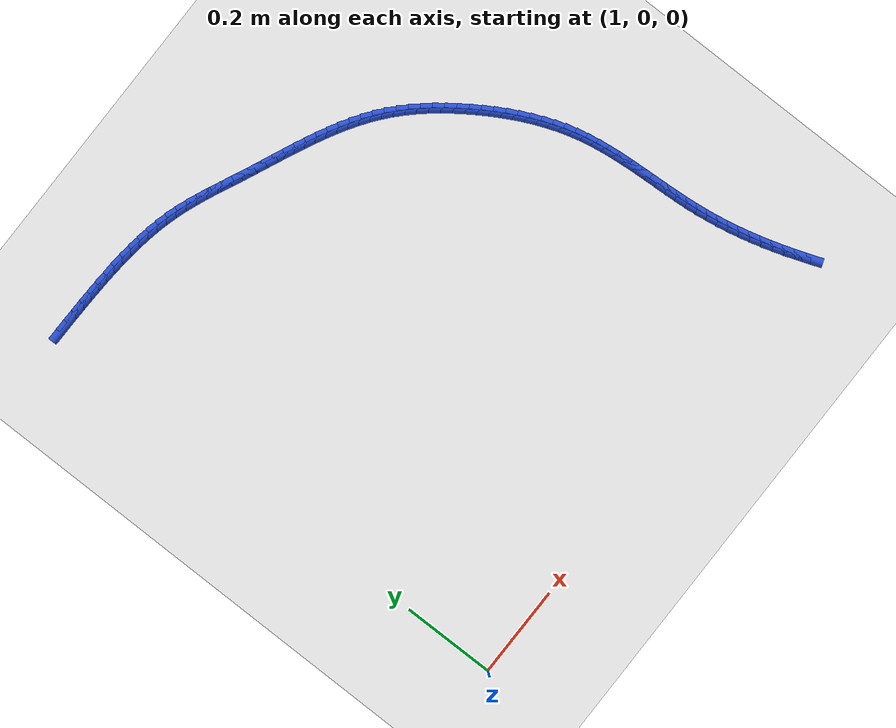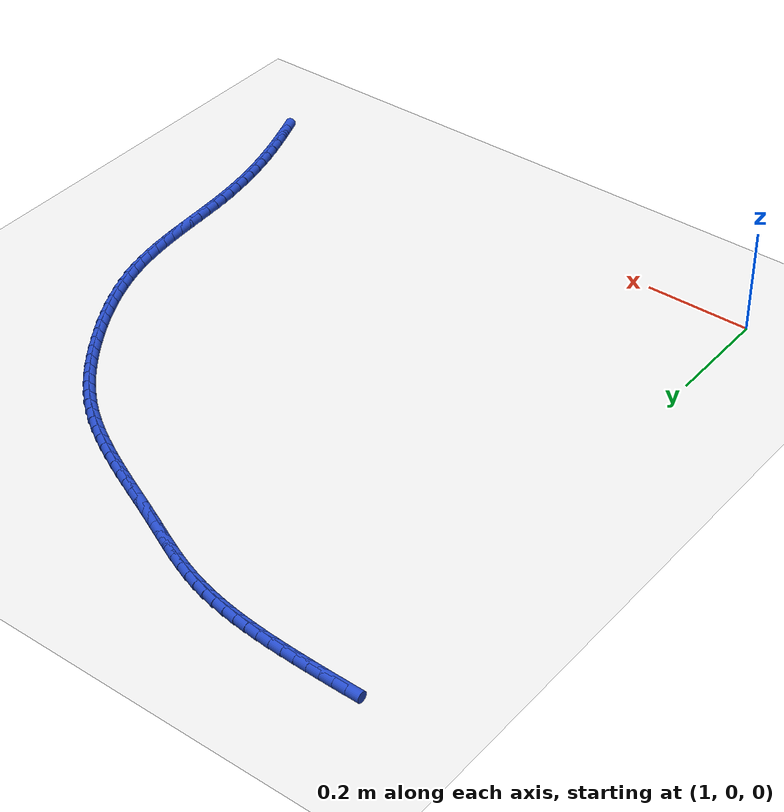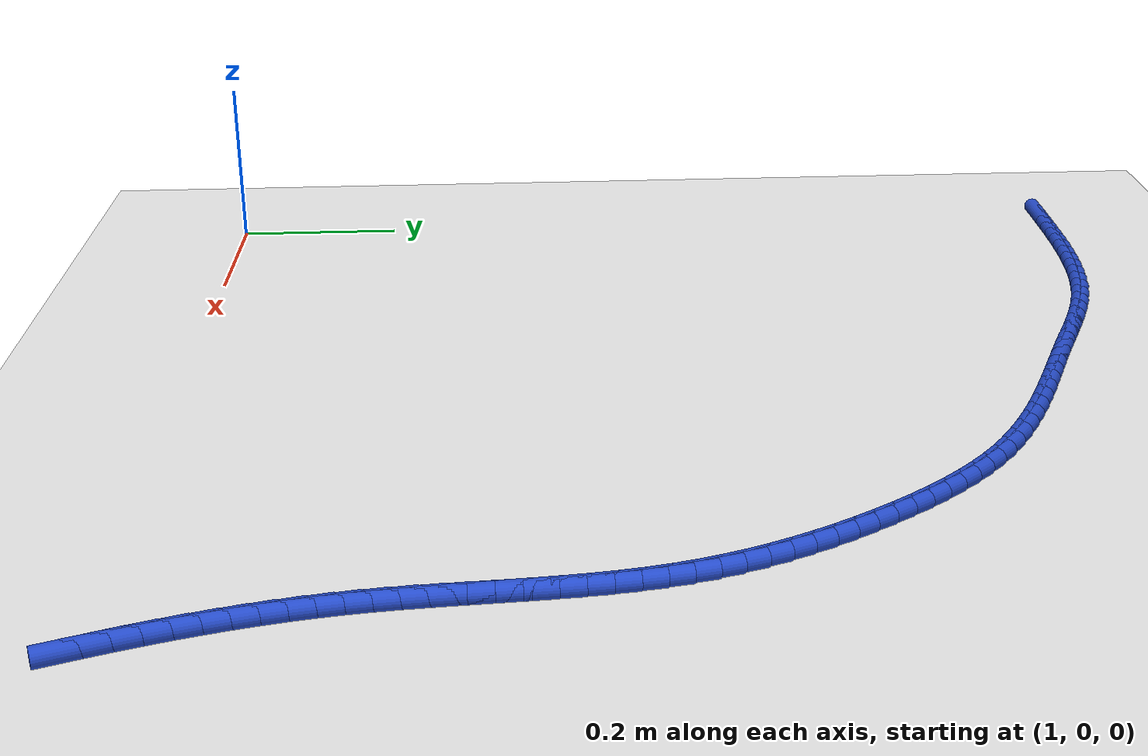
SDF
<sdf version="1.6">
 <world name="default">
  <model name="ground_plane">
   <static>1</static>
   <link name="link">
    <collision name="collision">
     <geometry><plane><normal>0 0 1</normal><size>100 100</size></plane></geometry>
     <surface><friction><ode><mu>100</mu><mu2>50</mu2></ode></friction></surface>
    </collision>
    <visual name="visual">
     <cast_shadows>0</cast_shadows>
     <geometry><plane><normal>0 0 1</normal><size>100 100</size></plane></geometry>
     <material>
      <script><uri>file://media/materials/scripts/gazebo.material</uri><name>Gazebo/WhiteGlow</name></script>
     </material>
    </visual>
   </link>
  </model>
  <model name="line">
   <link name="link_68">
    <pose>1.0212195065474527 1.0920411531585328 0.01 0 1.57 -0.01190918186807699</pose>
    <collision name="collision">
     <geometry><cylinder><radius>0.01</radius><length>0.08</length></cylinder></geometry>
    </collision>
    <visual name="visual">
     <material>
      <script><name>Gazebo/Blue</name><uri>file://media/materials/scripts/gazebo.material</uri></script>
     </material>
     <geometry><cylinder><radius>0.01</radius><length>0.08</length></cylinder></geometry>
    </visual>
   </link>
   <link name="link_69">
    <pose>1.045372040660851 1.091753502638048 0.01 0 1.57 -0.020824186868915316</pose>
    <collision name="collision">
     <geometry><cylinder><radius>0.01</radius><length>0.08</length></cylinder></geometry>
    </collision>
    <visual name="visual">
     <material>
      <script><name>Gazebo/Blue</name><uri>file://media/materials/scripts/gazebo.material</uri></script>
     </material>
     <geometry><cylinder><radius>0.01</radius><length>0.08</length></cylinder></geometry>
    </visual>
   </link>
   <link name="link_70">
    <pose>1.0695882642636443 1.091249146566251 0.01 0 1.57 -0.026765653244638928</pose>
    <collision name="collision">
     <geometry><cylinder><radius>0.01</radius><length>0.08</length></cylinder></geometry>
    </collision>
    <visual name="visual">
     <material>
      <script><name>Gazebo/Blue</name><uri>file://media/materials/scripts/gazebo.material</uri></script>
     </material>
     <geometry><cylinder><radius>0.01</radius><length>0.08</length></cylinder></geometry>
    </visual>
   </link>
   <link name="link_71">
    <pose>1.0938724663864265 1.0905990087725475 0.01 0 1.57 -0.03485059119270547</pose>
    <collision name="collision">
     <geometry><cylinder><radius>0.01</radius><length>0.08</length></cylinder></geometry>
    </collision>
    <visual name="visual">
     <material>
      <script><name>Gazebo/Blue</name><uri>file://media/materials/scripts/gazebo.material</uri></script>
     </material>
     <geometry><cylinder><radius>0.01</radius><length>0.08</length></cylinder></geometry>
    </visual>
   </link>
   <link name="link_72">
    <pose>1.118196166064458 1.0897509700986394 0.01 0 1.57 -0.046577803580105076</pose>
    <collision name="collision">
     <geometry><cylinder><radius>0.01</radius><length>0.08</length></cylinder></geometry>
    </collision>
    <visual name="visual">
     <material>
      <script><name>Gazebo/Blue</name><uri>file://media/materials/scripts/gazebo.material</uri></script>
     </material>
     <geometry><cylinder><radius>0.01</radius><length>0.08</length></cylinder></geometry>
    </visual>
   </link>
   <link name="link_73">
    <pose>1.1425213543378696 1.0886171361907921 0.01 0 1.57 -0.06198759726018203</pose>
    <collision name="collision">
     <geometry><cylinder><radius>0.01</radius><length>0.08</length></cylinder></geometry>
    </collision>
    <visual name="visual">
     <material>
      <script><name>Gazebo/Blue</name><uri>file://media/materials/scripts/gazebo.material</uri></script>
     </material>
     <geometry><cylinder><radius>0.01</radius><length>0.08</length></cylinder></geometry>
    </visual>
   </link>
   <link name="link_74">
    <pose>1.166810021189331 1.087109608724774 0.01 0 1.57 -0.08114251389314583</pose>
    <collision name="collision">
     <geometry><cylinder><radius>0.01</radius><length>0.08</length></cylinder></geometry>
    </collision>
    <visual name="visual">
     <material>
      <script><name>Gazebo/Blue</name><uri>file://media/materials/scripts/gazebo.material</uri></script>
     </material>
     <geometry><cylinder><radius>0.01</radius><length>0.08</length></cylinder></geometry>
    </visual>
   </link>
   <link name="link_75">
    <pose>1.191024156601513 1.0851404893763545 0.01 0 1.57 -0.10412179653237887</pose>
    <collision name="collision">
     <geometry><cylinder><radius>0.01</radius><length>0.08</length></cylinder></geometry>
    </collision>
    <visual name="visual">
     <material>
      <script><name>Gazebo/Blue</name><uri>file://media/materials/scripts/gazebo.material</uri></script>
     </material>
     <geometry><cylinder><radius>0.01</radius><length>0.08</length></cylinder></geometry>
    </visual>
   </link>
   <link name="link_76">
    <pose>1.215125750557085 1.0826218798213028 0.01 0 1.57 -0.131013929390474</pose>
    <collision name="collision">
     <geometry><cylinder><radius>0.01</radius><length>0.08</length></cylinder></geometry>
    </collision>
    <visual name="visual">
     <material>
      <script><name>Gazebo/Blue</name><uri>file://media/materials/scripts/gazebo.material</uri></script>
     </material>
     <geometry><cylinder><radius>0.01</radius><length>0.08</length></cylinder></geometry>
    </visual>
   </link>
   <link name="link_77">
    <pose>1.2390767930387174 1.0794658817353877 0.01 0 1.57 -0.16190695889666235</pose>
    <collision name="collision">
     <geometry><cylinder><radius>0.01</radius><length>0.08</length></cylinder></geometry>
    </collision>
    <visual name="visual">
     <material>
      <script><name>Gazebo/Blue</name><uri>file://media/materials/scripts/gazebo.material</uri></script>
     </material>
     <geometry><cylinder><radius>0.01</radius><length>0.08</length></cylinder></geometry>
    </visual>
   </link>
   <link name="link_78">
    <pose>1.2628392740290804 1.0755845967943782 0.01 0 1.57 -0.1968761777485323</pose>
    <collision name="collision">
     <geometry><cylinder><radius>0.01</radius><length>0.08</length></cylinder></geometry>
    </collision>
    <visual name="visual">
     <material>
      <script><name>Gazebo/Blue</name><uri>file://media/materials/scripts/gazebo.material</uri></script>
     </material>
     <geometry><cylinder><radius>0.01</radius><length>0.08</length></cylinder></geometry>
    </visual>
   </link>
   <link name="link_79">
    <pose>1.2863751835108435 1.0708901266740436 0.01 0 1.57 -0.23596891845109455</pose>
    <collision name="collision">
     <geometry><cylinder><radius>0.01</radius><length>0.08</length></cylinder></geometry>
    </collision>
    <visual name="visual">
     <material>
      <script><name>Gazebo/Blue</name><uri>file://media/materials/scripts/gazebo.material</uri></script>
     </material>
     <geometry><cylinder><radius>0.01</radius><length>0.08</length></cylinder></geometry>
    </visual>
   </link>
   <link name="link_80">
    <pose>1.3096465114666773 1.0652945730501526 0.01 0 1.57 -0.27918655234166023</pose>
    <collision name="collision">
     <geometry><cylinder><radius>0.01</radius><length>0.08</length></cylinder></geometry>
    </collision>
    <visual name="visual">
     <material>
      <script><name>Gazebo/Blue</name><uri>file://media/materials/scripts/gazebo.material</uri></script>
     </material>
     <geometry><cylinder><radius>0.01</radius><length>0.08</length></cylinder></geometry>
    </visual>
   </link>
   <link name="link_81">
    <pose>1.332615247879252 1.0587100375984748 0.01 0 1.57 -0.32467346520582946</pose>
    <collision name="collision">
     <geometry><cylinder><radius>0.01</radius><length>0.08</length></cylinder></geometry>
    </collision>
    <visual name="visual">
     <material>
      <script><name>Gazebo/Blue</name><uri>file://media/materials/scripts/gazebo.material</uri></script>
     </material>
     <geometry><cylinder><radius>0.01</radius><length>0.08</length></cylinder></geometry>
    </visual>
   </link>
   <link name="link_82">
    <pose>1.3552594528700852 1.051088356235415 0.01 0 1.57 -0.3639527078689119</pose>
    <collision name="collision">
     <geometry><cylinder><radius>0.01</radius><length>0.08</length></cylinder></geometry>
    </collision>
    <visual name="visual">
     <material>
      <script><name>Gazebo/Blue</name><uri>file://media/materials/scripts/gazebo.material</uri></script>
     </material>
     <geometry><cylinder><radius>0.01</radius><length>0.08</length></cylinder></geometry>
    </visual>
   </link>
   <link name="link_83">
    <pose>1.3776319329485562 1.0425661791462617 0.01 0 1.57 -0.3945079394052514</pose>
    <collision name="collision">
     <geometry><cylinder><radius>0.01</radius><length>0.08</length></cylinder></geometry>
    </collision>
    <visual name="visual">
     <material>
      <script><name>Gazebo/Blue</name><uri>file://media/materials/scripts/gazebo.material</uri></script>
     </material>
     <geometry><cylinder><radius>0.01</radius><length>0.08</length></cylinder></geometry>
    </visual>
   </link>
   <link name="link_84">
    <pose>1.3998072101457526 1.033333849254945 0.01 0 1.57 -0.4163665491319276</pose>
    <collision name="collision">
     <geometry><cylinder><radius>0.01</radius><length>0.08</length></cylinder></geometry>
    </collision>
    <visual name="visual">
     <material>
      <script><name>Gazebo/Blue</name><uri>file://media/materials/scripts/gazebo.material</uri></script>
     </material>
     <geometry><cylinder><radius>0.01</radius><length>0.08</length></cylinder></geometry>
    </visual>
   </link>
   <link name="link_85">
    <pose>1.4218598088666141 1.023581715354865 0.01 0 1.57 -0.4296202575268219</pose>
    <collision name="collision">
     <geometry><cylinder><radius>0.01</radius><length>0.08</length></cylinder></geometry>
    </collision>
    <visual name="visual">
     <material>
      <script><name>Gazebo/Blue</name><uri>file://media/materials/scripts/gazebo.material</uri></script>
     </material>
     <geometry><cylinder><radius>0.01</radius><length>0.08</length></cylinder></geometry>
    </visual>
   </link>
   <link name="link_86">
    <pose>1.4438642535160788 1.013500126239419 0.01 0 1.57 -0.4343752834057227</pose>
    <collision name="collision">
     <geometry><cylinder><radius>0.01</radius><length>0.08</length></cylinder></geometry>
    </collision>
    <visual name="visual">
     <material>
      <script><name>Gazebo/Blue</name><uri>file://media/materials/scripts/gazebo.material</uri></script>
     </material>
     <geometry><cylinder><radius>0.01</radius><length>0.08</length></cylinder></geometry>
    </visual>
   </link>
   <link name="link_87">
    <pose>1.465895068499085 1.0032794307020054 0.01 0 1.57 -0.43075621564944205</pose>
    <collision name="collision">
     <geometry><cylinder><radius>0.01</radius><length>0.08</length></cylinder></geometry>
    </collision>
    <visual name="visual">
     <material>
      <script><name>Gazebo/Blue</name><uri>file://media/materials/scripts/gazebo.material</uri></script>
     </material>
     <geometry><cylinder><radius>0.01</radius><length>0.08</length></cylinder></geometry>
    </visual>
   </link>
   <link name="link_88">
    <pose>1.4880264109798955 0.9931092685119685 0.01 0 1.57 -0.4229475002258053</pose>
    <collision name="collision">
     <geometry><cylinder><radius>0.01</radius><length>0.08</length></cylinder></geometry>
    </collision>
    <visual name="visual">
     <material>
      <script><name>Gazebo/Blue</name><uri>file://media/materials/scripts/gazebo.material</uri></script>
     </material>
     <geometry><cylinder><radius>0.01</radius><length>0.08</length></cylinder></geometry>
    </visual>
   </link>
   <link name="link_89">
    <pose>1.5102861370675698 0.9830898869392879 0.01 0 1.57 -0.419035956324511</pose>
    <collision name="collision">
     <geometry><cylinder><radius>0.01</radius><length>0.08</length></cylinder></geometry>
    </collision>
    <visual name="visual">
     <material>
      <script><name>Gazebo/Blue</name><uri>file://media/materials/scripts/gazebo.material</uri></script>
     </material>
     <geometry><cylinder><radius>0.01</radius><length>0.08</length></cylinder></geometry>
    </visual>
   </link>
   <link name="link_90">
    <pose>1.5326111584059867 0.9731459486369158 0.01 0 1.57 -0.4199360048989698</pose>
    <collision name="collision">
     <geometry><cylinder><radius>0.01</radius><length>0.08</length></cylinder></geometry>
    </collision>
    <visual name="visual">
     <material>
      <script><name>Gazebo/Blue</name><uri>file://media/materials/scripts/gazebo.material</uri></script>
     </material>
     <geometry><cylinder><radius>0.01</radius><length>0.08</length></cylinder></geometry>
    </visual>
   </link>
   <link name="link_91">
    <pose>1.5549277937929822 0.9631816648668164 0.01 0 1.57 -0.42565033856099116</pose>
    <collision name="collision">
     <geometry><cylinder><radius>0.01</radius><length>0.08</length></cylinder></geometry>
    </collision>
    <visual name="visual">
     <material>
      <script><name>Gazebo/Blue</name><uri>file://media/materials/scripts/gazebo.material</uri></script>
     </material>
     <geometry><cylinder><radius>0.01</radius><length>0.08</length></cylinder></geometry>
    </visual>
   </link>
   <link name="link_92">
    <pose>1.5771623620263917 0.9531012468909543 0.01 0 1.57 -0.43621393192179325</pose>
    <collision name="collision">
     <geometry><cylinder><radius>0.01</radius><length>0.08</length></cylinder></geometry>
    </collision>
    <visual name="visual">
     <material>
      <script><name>Gazebo/Blue</name><uri>file://media/materials/scripts/gazebo.material</uri></script>
     </material>
     <geometry><cylinder><radius>0.01</radius><length>0.08</length></cylinder></geometry>
    </visual>
   </link>
   <link name="link_93">
    <pose>1.5992411819040517 0.942808905971294 0.01 0 1.57 -0.4516905533019826</pose>
    <collision name="collision">
     <geometry><cylinder><radius>0.01</radius><length>0.08</length></cylinder></geometry>
    </collision>
    <visual name="visual">
     <material>
      <script><name>Gazebo/Blue</name><uri>file://media/materials/scripts/gazebo.material</uri></script>
     </material>
     <geometry><cylinder><radius>0.01</radius><length>0.08</length></cylinder></geometry>
    </visual>
   </link>
   <link name="link_94">
    <pose>1.621090572223799 0.9322088533697996 0.01 0 1.57 -0.47216606473237527</pose>
    <collision name="collision">
     <geometry><cylinder><radius>0.01</radius><length>0.08</length></cylinder></geometry>
    </collision>
    <visual name="visual">
     <material>
      <script><name>Gazebo/Blue</name><uri>file://media/materials/scripts/gazebo.material</uri></script>
     </material>
     <geometry><cylinder><radius>0.01</radius><length>0.08</length></cylinder></geometry>
    </visual>
   </link>
   <link name="link_95">
    <pose>1.6426368517834689 0.9212053003484352 0.01 0 1.57 -0.4977379403281383</pose>
    <collision name="collision">
     <geometry><cylinder><radius>0.01</radius><length>0.08</length></cylinder></geometry>
    </collision>
    <visual name="visual">
     <material>
      <script><name>Gazebo/Blue</name><uri>file://media/materials/scripts/gazebo.material</uri></script>
     </material>
     <geometry><cylinder><radius>0.01</radius><length>0.08</length></cylinder></geometry>
    </visual>
   </link>
   <link name="link_96">
    <pose>1.6638063393808975 0.9097024581691657 0.01 0 1.57 -0.5285002932071909</pose>
    <collision name="collision">
     <geometry><cylinder><radius>0.01</radius><length>0.08</length></cylinder></geometry>
    </collision>
    <visual name="visual">
     <material>
      <script><name>Gazebo/Blue</name><uri>file://media/materials/scripts/gazebo.material</uri></script>
     </material>
     <geometry><cylinder><radius>0.01</radius><length>0.08</length></cylinder></geometry>
    </visual>
   </link>
   <link name="link_97">
    <pose>1.6845253538139207 0.8976045380939552 0.01 0 1.57 -0.5645237545394914</pose>
    <collision name="collision">
     <geometry><cylinder><radius>0.01</radius><length>0.08</length></cylinder></geometry>
    </collision>
    <visual name="visual">
     <material>
      <script><name>Gazebo/Blue</name><uri>file://media/materials/scripts/gazebo.material</uri></script>
     </material>
     <geometry><cylinder><radius>0.01</radius><length>0.08</length></cylinder></geometry>
    </visual>
   </link>
   <link name="link_98">
    <pose>1.7047202138803756 0.8848157513847686 0.01 0 1.57 -0.6058299251542558</pose>
    <collision name="collision">
     <geometry><cylinder><radius>0.01</radius><length>0.08</length></cylinder></geometry>
    </collision>
    <visual name="visual">
     <material>
      <script><name>Gazebo/Blue</name><uri>file://media/materials/scripts/gazebo.material</uri></script>
     </material>
     <geometry><cylinder><radius>0.01</radius><length>0.08</length></cylinder></geometry>
    </visual>
   </link>
   <link name="link_99">
    <pose>1.7243172383780978 0.8712403093035699 0.01 0 1.57 -0.6523609691356973</pose>
    <collision name="collision">
     <geometry><cylinder><radius>0.01</radius><length>0.08</length></cylinder></geometry>
    </collision>
    <visual name="visual">
     <material>
      <script><name>Gazebo/Blue</name><uri>file://media/materials/scripts/gazebo.material</uri></script>
     </material>
     <geometry><cylinder><radius>0.01</radius><length>0.08</length></cylinder></geometry>
    </visual>
   </link>
   <link name="link_100">
    <pose>1.7432427461049236 0.856782423112323 0.01 0 1.57 -0.7036854309695617</pose>
    <collision name="collision">
     <geometry><cylinder><radius>0.01</radius><length>0.08</length></cylinder></geometry>
    </collision>
    <visual name="visual">
     <material>
      <script><name>Gazebo/Blue</name><uri>file://media/materials/scripts/gazebo.material</uri></script>
     </material>
     <geometry><cylinder><radius>0.01</radius><length>0.08</length></cylinder></geometry>
    </visual>
   </link>
   <link name="link_101">
    <pose>1.7614261924535228 0.8413518035168185 0.01 0 1.57 -0.7550004369076673</pose>
    <collision name="collision">
     <geometry><cylinder><radius>0.01</radius><length>0.08</length></cylinder></geometry>
    </collision>
    <visual name="visual">
     <material>
      <script><name>Gazebo/Blue</name><uri>file://media/materials/scripts/gazebo.material</uri></script>
     </material>
     <geometry><cylinder><radius>0.01</radius><length>0.08</length></cylinder></geometry>
    </visual>
   </link>
   <link name="link_102">
    <pose>1.7788519716329034 0.8249544863621229 0.01 0 1.57 -0.802368112816253</pose>
    <collision name="collision">
     <geometry><cylinder><radius>0.01</radius><length>0.08</length></cylinder></geometry>
    </collision>
    <visual name="visual">
     <material>
      <script><name>Gazebo/Blue</name><uri>file://media/materials/scripts/gazebo.material</uri></script>
     </material>
     <geometry><cylinder><radius>0.01</radius><length>0.08</length></cylinder></geometry>
    </visual>
   </link>
   <link name="link_103">
    <pose>1.7955512793656185 0.8076785653644253 0.01 0 1.57 -0.8457392690450313</pose>
    <collision name="collision">
     <geometry><cylinder><radius>0.01</radius><length>0.08</length></cylinder></geometry>
    </collision>
    <visual name="visual">
     <material>
      <script><name>Gazebo/Blue</name><uri>file://media/materials/scripts/gazebo.material</uri></script>
     </material>
     <geometry><cylinder><radius>0.01</radius><length>0.08</length></cylinder></geometry>
    </visual>
   </link>
   <link name="link_104">
    <pose>1.8115568073870685 0.789614757224093 0.01 0 1.57 -0.8852408995973183</pose>
    <collision name="collision">
     <geometry><cylinder><radius>0.01</radius><length>0.08</length></cylinder></geometry>
    </collision>
    <visual name="visual">
     <material>
      <script><name>Gazebo/Blue</name><uri>file://media/materials/scripts/gazebo.material</uri></script>
     </material>
     <geometry><cylinder><radius>0.01</radius><length>0.08</length></cylinder></geometry>
    </visual>
   </link>
   <link name="link_105">
    <pose>1.826901247432656 0.7708537786414945 0.01 0 1.57 -0.9210307739773366</pose>
    <collision name="collision">
     <geometry><cylinder><radius>0.01</radius><length>0.08</length></cylinder></geometry>
    </collision>
    <visual name="visual">
     <material>
      <script><name>Gazebo/Blue</name><uri>file://media/materials/scripts/gazebo.material</uri></script>
     </material>
     <geometry><cylinder><radius>0.01</radius><length>0.08</length></cylinder></geometry>
    </visual>
   </link>
   <link name="link_106">
    <pose>1.8416172912377822 0.7514863463169971 0.01 0 1.57 -0.9532804650332631</pose>
    <collision name="collision">
     <geometry><cylinder><radius>0.01</radius><length>0.08</length></cylinder></geometry>
    </collision>
    <visual name="visual">
     <material>
      <script><name>Gazebo/Blue</name><uri>file://media/materials/scripts/gazebo.material</uri></script>
     </material>
     <geometry><cylinder><radius>0.01</radius><length>0.08</length></cylinder></geometry>
    </visual>
   </link>
   <link name="link_107">
    <pose>1.8557376305378483 0.7316031769509679 0.01 0 1.57 -0.9821870273676716</pose>
    <collision name="collision">
     <geometry><cylinder><radius>0.01</radius><length>0.08</length></cylinder></geometry>
    </collision>
    <visual name="visual">
     <material>
      <script><name>Gazebo/Blue</name><uri>file://media/materials/scripts/gazebo.material</uri></script>
     </material>
     <geometry><cylinder><radius>0.01</radius><length>0.08</length></cylinder></geometry>
    </visual>
   </link>
   <link name="link_108">
    <pose>1.8692944812991286 0.7112946073860374 0.01 0 1.57 -1.0097631373762705</pose>
    <collision name="collision">
     <geometry><cylinder><radius>0.01</radius><length>0.08</length></cylinder></geometry>
    </collision>
    <visual name="visual">
     <material>
      <script><name>Gazebo/Blue</name><uri>file://media/materials/scripts/gazebo.material</uri></script>
     </material>
     <geometry><cylinder><radius>0.01</radius><length>0.08</length></cylinder></geometry>
    </visual>
   </link>
   <link name="link_109">
    <pose>1.8822845463614324 0.6906226205110207 0.01 0 1.57 -1.0392395607632612</pose>
    <collision name="collision">
     <geometry><cylinder><radius>0.01</radius><length>0.08</length></cylinder></geometry>
    </collision>
    <visual name="visual">
     <material>
      <script><name>Gazebo/Blue</name><uri>file://media/materials/scripts/gazebo.material</uri></script>
     </material>
     <geometry><cylinder><radius>0.01</radius><length>0.08</length></cylinder></geometry>
    </visual>
   </link>
   <link name="link_110">
    <pose>1.894645052692489 0.6696017132201757 0.01 0 1.57 -1.0710285974018636</pose>
    <collision name="collision">
     <geometry><cylinder><radius>0.01</radius><length>0.08</length></cylinder></geometry>
    </collision>
    <visual name="visual">
     <material>
      <script><name>Gazebo/Blue</name><uri>file://media/materials/scripts/gazebo.material</uri></script>
     </material>
     <geometry><cylinder><radius>0.01</radius><length>0.08</length></cylinder></geometry>
    </visual>
   </link>
   <link name="link_111">
    <pose>1.9063075557281486 0.648241854213006 0.01 0 1.57 -1.105245989051057</pose>
    <collision name="collision">
     <geometry><cylinder><radius>0.01</radius><length>0.08</length></cylinder></geometry>
    </collision>
    <visual name="visual">
     <material>
      <script><name>Gazebo/Blue</name><uri>file://media/materials/scripts/gazebo.material</uri></script>
     </material>
     <geometry><cylinder><radius>0.01</radius><length>0.08</length></cylinder></geometry>
    </visual>
   </link>
   <link name="link_112">
    <pose>1.9172036109042625 0.6265530121890152 0.01 0 1.57 -1.142002197532831</pose>
    <collision name="collision">
     <geometry><cylinder><radius>0.01</radius><length>0.08</length></cylinder></geometry>
    </collision>
    <visual name="visual">
     <material>
      <script><name>Gazebo/Blue</name><uri>file://media/materials/scripts/gazebo.material</uri></script>
     </material>
     <geometry><cylinder><radius>0.01</radius><length>0.08</length></cylinder></geometry>
    </visual>
   </link>
   <link name="link_113">
    <pose>1.9272647736566826 0.6045451558477073 0.01 0 1.57 -1.1813962390715187</pose>
    <collision name="collision">
     <geometry><cylinder><radius>0.01</radius><length>0.08</length></cylinder></geometry>
    </collision>
    <visual name="visual">
     <material>
      <script><name>Gazebo/Blue</name><uri>file://media/materials/scripts/gazebo.material</uri></script>
     </material>
     <geometry><cylinder><radius>0.01</radius><length>0.08</length></cylinder></geometry>
    </visual>
   </link>
   <link name="link_114">
    <pose>1.9364225994212585 0.5822282538885862 0.01 0 1.57 -1.2235080915673442</pose>
    <collision name="collision">
     <geometry><cylinder><radius>0.01</radius><length>0.08</length></cylinder></geometry>
    </collision>
    <visual name="visual">
     <material>
      <script><name>Gazebo/Blue</name><uri>file://media/materials/scripts/gazebo.material</uri></script>
     </material>
     <geometry><cylinder><radius>0.01</radius><length>0.08</length></cylinder></geometry>
    </visual>
   </link>
   <link name="link_115">
    <pose>1.9446086436338412 0.5596122750111561 0.01 0 1.57 -1.2683896804730386</pose>
    <collision name="collision">
     <geometry><cylinder><radius>0.01</radius><length>0.08</length></cylinder></geometry>
    </collision>
    <visual name="visual">
     <material>
      <script><name>Gazebo/Blue</name><uri>file://media/materials/scripts/gazebo.material</uri></script>
     </material>
     <geometry><cylinder><radius>0.01</radius><length>0.08</length></cylinder></geometry>
    </visual>
   </link>
   <link name="link_116">
    <pose>1.9517544617302827 0.5367071879149203 0.01 0 1.57 -1.3160333612362214</pose>
    <collision name="collision">
     <geometry><cylinder><radius>0.01</radius><length>0.08</length></cylinder></geometry>
    </collision>
    <visual name="visual">
     <material>
      <script><name>Gazebo/Blue</name><uri>file://media/materials/scripts/gazebo.material</uri></script>
     </material>
     <geometry><cylinder><radius>0.01</radius><length>0.08</length></cylinder></geometry>
    </visual>
   </link>
   <link name="link_117">
    <pose>1.9577921191399736 0.5135230267607105 0.01 0 1.57 -1.3634942503825223</pose>
    <collision name="collision">
     <geometry><cylinder><radius>0.01</radius><length>0.08</length></cylinder></geometry>
    </collision>
    <visual name="visual">
     <material>
      <script><name>Gazebo/Blue</name><uri>file://media/materials/scripts/gazebo.material</uri></script>
     </material>
     <geometry><cylinder><radius>0.01</radius><length>0.08</length></cylinder></geometry>
    </visual>
   </link>
   <link name="link_118">
    <pose>1.9627230084965483 0.4900787243531396 0.01 0 1.57 -1.4048317184677104</pose>
    <collision name="collision">
     <geometry><cylinder><radius>0.01</radius><length>0.08</length></cylinder></geometry>
    </collision>
    <visual name="visual">
     <material>
      <script><name>Gazebo/Blue</name><uri>file://media/materials/scripts/gazebo.material</uri></script>
     </material>
     <geometry><cylinder><radius>0.01</radius><length>0.08</length></cylinder></geometry>
    </visual>
   </link>
   <link name="link_119">
    <pose>1.9666874714364522 0.46641104859767535 0.01 0 1.57 -1.4392882162370364</pose>
    <collision name="collision">
     <geometry><cylinder><radius>0.01</radius><length>0.08</length></cylinder></geometry>
    </collision>
    <visual name="visual">
     <material>
      <script><name>Gazebo/Blue</name><uri>file://media/materials/scripts/gazebo.material</uri></script>
     </material>
     <geometry><cylinder><radius>0.01</radius><length>0.08</length></cylinder></geometry>
    </visual>
   </link>
   <link name="link_120">
    <pose>1.9698424316811147 0.44255889582929653 0.01 0 1.57 -1.4668960909127482</pose>
    <collision name="collision">
     <geometry><cylinder><radius>0.01</radius><length>0.08</length></cylinder></geometry>
    </collision>
    <visual name="visual">
     <material>
      <script><name>Gazebo/Blue</name><uri>file://media/materials/scripts/gazebo.material</uri></script>
     </material>
     <geometry><cylinder><radius>0.01</radius><length>0.08</length></cylinder></geometry>
    </visual>
   </link>
   <link name="link_121">
    <pose>1.9723448129519647 0.41856116238298186 0.01 0 1.57 -1.4877364846915697</pose>
    <collision name="collision">
     <geometry><cylinder><radius>0.01</radius><length>0.08</length></cylinder></geometry>
    </collision>
    <visual name="visual">
     <material>
      <script><name>Gazebo/Blue</name><uri>file://media/materials/scripts/gazebo.material</uri></script>
     </material>
     <geometry><cylinder><radius>0.01</radius><length>0.08</length></cylinder></geometry>
    </visual>
   </link>
   <link name="link_122">
    <pose>1.9743515389704323 0.3944567445937098 0.01 0 1.57 -1.5019008947467556</pose>
    <collision name="collision">
     <geometry><cylinder><radius>0.01</radius><length>0.08</length></cylinder></geometry>
    </collision>
    <visual name="visual">
     <material>
      <script><name>Gazebo/Blue</name><uri>file://media/materials/scripts/gazebo.material</uri></script>
     </material>
     <geometry><cylinder><radius>0.01</radius><length>0.08</length></cylinder></geometry>
    </visual>
   </link>
   <link name="link_123">
    <pose>1.9760195334579462 0.37028453879645984 0.01 0 1.57 -1.509463460684522</pose>
    <collision name="collision">
     <geometry><cylinder><radius>0.01</radius><length>0.08</length></cylinder></geometry>
    </collision>
    <visual name="visual">
     <material>
      <script><name>Gazebo/Blue</name><uri>file://media/materials/scripts/gazebo.material</uri></script>
     </material>
     <geometry><cylinder><radius>0.01</radius><length>0.08</length></cylinder></geometry>
    </visual>
   </link>
   <link name="link_124">
    <pose>1.9775057201359356 0.34608344132621044 0.01 0 1.57 -1.5104630020349505</pose>
    <collision name="collision">
     <geometry><cylinder><radius>0.01</radius><length>0.08</length></cylinder></geometry>
    </collision>
    <visual name="visual">
     <material>
      <script><name>Gazebo/Blue</name><uri>file://media/materials/scripts/gazebo.material</uri></script>
     </material>
     <geometry><cylinder><radius>0.01</radius><length>0.08</length></cylinder></geometry>
    </visual>
   </link>
   <link name="link_125">
    <pose>1.9789670227258305 0.3218923485179403 0.01 0 1.57 -1.5048936592473698</pose>
    <collision name="collision">
     <geometry><cylinder><radius>0.01</radius><length>0.08</length></cylinder></geometry>
    </collision>
    <visual name="visual">
     <material>
      <script><name>Gazebo/Blue</name><uri>file://media/materials/scripts/gazebo.material</uri></script>
     </material>
     <geometry><cylinder><radius>0.01</radius><length>0.08</length></cylinder></geometry>
    </visual>
   </link>
   <link name="link_126">
    <pose>1.9805603649490597 0.2977501567066279 0.01 0 1.57 -1.492703419152247</pose>
    <collision name="collision">
     <geometry><cylinder><radius>0.01</radius><length>0.08</length></cylinder></geometry>
    </collision>
    <visual name="visual">
     <material>
      <script><name>Gazebo/Blue</name><uri>file://media/materials/scripts/gazebo.material</uri></script>
     </material>
     <geometry><cylinder><radius>0.01</radius><length>0.08</length></cylinder></geometry>
    </visual>
   </link>
   <link name="link_127">
    <pose>1.9824426705270528 0.27369576222725284 0.01 0 1.57 -1.4738005171510487</pose>
    <collision name="collision">
     <geometry><cylinder><radius>0.01</radius><length>0.08</length></cylinder></geometry>
    </collision>
    <visual name="visual">
     <material>
      <script><name>Gazebo/Blue</name><uri>file://media/materials/scripts/gazebo.material</uri></script>
     </material>
     <geometry><cylinder><radius>0.01</radius><length>0.08</length></cylinder></geometry>
    </visual>
   </link>
   <link name="link_128">
    <pose>1.9847708631812389 0.2497680614147933 0.01 0 1.57 -1.44833365918377</pose>
    <collision name="collision">
     <geometry><cylinder><radius>0.01</radius><length>0.08</length></cylinder></geometry>
    </collision>
    <visual name="visual">
     <material>
      <script><name>Gazebo/Blue</name><uri>file://media/materials/scripts/gazebo.material</uri></script>
     </material>
     <geometry><cylinder><radius>0.01</radius><length>0.08</length></cylinder></geometry>
    </visual>
   </link>
   <link name="link_129">
    <pose>1.9876957999153186 0.22600326607075683 0.01 0 1.57 -1.4202425535601797</pose>
    <collision name="collision">
     <geometry><cylinder><radius>0.01</radius><length>0.08</length></cylinder></geometry>
    </collision>
    <visual name="visual">
     <material>
      <script><name>Gazebo/Blue</name><uri>file://media/materials/scripts/gazebo.material</uri></script>
     </material>
     <geometry><cylinder><radius>0.01</radius><length>0.08</length></cylinder></geometry>
    </visual>
   </link>
   <link name="link_130">
    <pose>1.9912768916729966 0.20239712295115656 0.01 0 1.57 -1.3927458843381455</pose>
    <collision name="collision">
     <geometry><cylinder><radius>0.01</radius><length>0.08</length></cylinder></geometry>
    </collision>
    <visual name="visual">
     <material>
      <script><name>Gazebo/Blue</name><uri>file://media/materials/scripts/gazebo.material</uri></script>
     </material>
     <geometry><cylinder><radius>0.01</radius><length>0.08</length></cylinder></geometry>
    </visual>
   </link>
   <link name="link_131">
    <pose>1.9955028097949443 0.17891407641084078 0.01 0 1.57 -1.3660833729679382</pose>
    <collision name="collision">
     <geometry><cylinder><radius>0.01</radius><length>0.08</length></cylinder></geometry>
    </collision>
    <visual name="visual">
     <material>
      <script><name>Gazebo/Blue</name><uri>file://media/materials/scripts/gazebo.material</uri></script>
     </material>
     <geometry><cylinder><radius>0.01</radius><length>0.08</length></cylinder></geometry>
    </visual>
   </link>
   <link name="link_132">
    <pose>2.0003603859579226 0.15551775675008042 0.01 0 1.57 -1.3403998809047424</pose>
    <collision name="collision">
     <geometry><cylinder><radius>0.01</radius><length>0.08</length></cylinder></geometry>
    </collision>
    <visual name="visual">
     <material>
      <script><name>Gazebo/Blue</name><uri>file://media/materials/scripts/gazebo.material</uri></script>
     </material>
     <geometry><cylinder><radius>0.01</radius><length>0.08</length></cylinder></geometry>
    </visual>
   </link>
   <link name="link_133">
    <pose>2.0058364518386953 0.1321717942691456 0.01 0 1.57 -1.3158232150096008</pose>
    <collision name="collision">
     <geometry><cylinder><radius>0.01</radius><length>0.08</length></cylinder></geometry>
    </collision>
    <visual name="visual">
     <material>
      <script><name>Gazebo/Blue</name><uri>file://media/materials/scripts/gazebo.material</uri></script>
     </material>
     <geometry><cylinder><radius>0.01</radius><length>0.08</length></cylinder></geometry>
    </visual>
   </link>
   <link name="link_134">
    <pose>2.0119178391140236 0.10883981926830676 0.01 0 1.57 -1.2924623519577412</pose>
    <collision name="collision">
     <geometry><cylinder><radius>0.01</radius><length>0.08</length></cylinder></geometry>
    </collision>
    <visual name="visual">
     <material>
      <script><name>Gazebo/Blue</name><uri>file://media/materials/scripts/gazebo.material</uri></script>
     </material>
     <geometry><cylinder><radius>0.01</radius><length>0.08</length></cylinder></geometry>
    </visual>
   </link>
   <link name="link_135">
    <pose>2.0185913794606702 0.08548546204783378 0.01 0 1.57 -1.2704064961175054</pose>
    <collision name="collision">
     <geometry><cylinder><radius>0.01</radius><length>0.08</length></cylinder></geometry>
    </collision>
    <visual name="visual">
     <material>
      <script><name>Gazebo/Blue</name><uri>file://media/materials/scripts/gazebo.material</uri></script>
     </material>
     <geometry><cylinder><radius>0.01</radius><length>0.08</length></cylinder></geometry>
    </visual>
   </link>
   <link name="link_136">
    <pose>2.0258439045553964 0.06207235290799779 0.01 0 1.57 -1.249726524734416</pose>
    <collision name="collision">
     <geometry><cylinder><radius>0.01</radius><length>0.08</length></cylinder></geometry>
    </collision>
    <visual name="visual">
     <material>
      <script><name>Gazebo/Blue</name><uri>file://media/materials/scripts/gazebo.material</uri></script>
     </material>
     <geometry><cylinder><radius>0.01</radius><length>0.08</length></cylinder></geometry>
    </visual>
   </link>
   <link name="link_137">
    <pose>2.033662198293173 0.03856413955121775 0.01 0 1.57 -1.2317418510960785</pose>
    <collision name="collision">
     <geometry><cylinder><radius>0.01</radius><length>0.08</length></cylinder></geometry>
    </collision>
    <visual name="visual">
     <material>
      <script><name>Gazebo/Blue</name><uri>file://media/materials/scripts/gazebo.material</uri></script>
     </material>
     <geometry><cylinder><radius>0.01</radius><length>0.08</length></cylinder></geometry>
    </visual>
   </link>
   <link name="link_138">
    <pose>2.0419943050992604 0.014938578611346016 0.01 0 1.57 -1.2198732720678762</pose>
    <collision name="collision">
     <geometry><cylinder><radius>0.01</radius><length>0.08</length></cylinder></geometry>
    </collision>
    <visual name="visual">
     <material>
      <script><name>Gazebo/Blue</name><uri>file://media/materials/scripts/gazebo.material</uri></script>
     </material>
     <geometry><cylinder><radius>0.01</radius><length>0.08</length></cylinder></geometry>
    </visual>
   </link>
  </model>
 </world>
</sdf>
